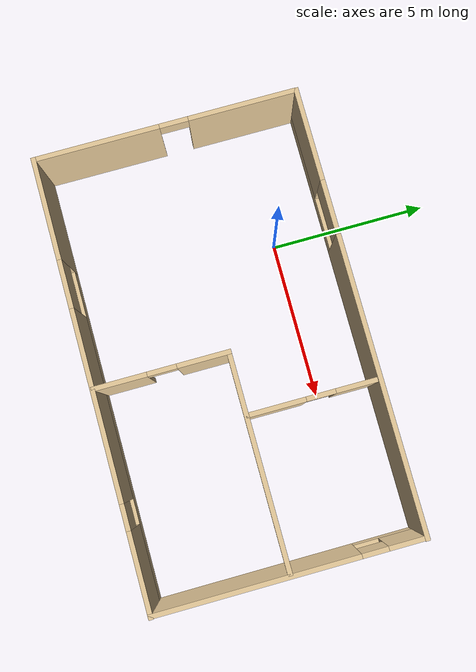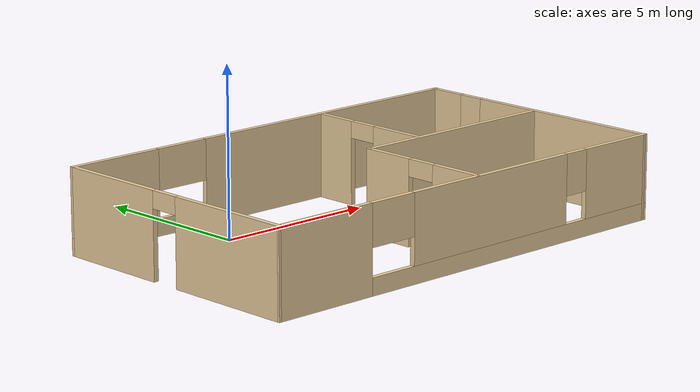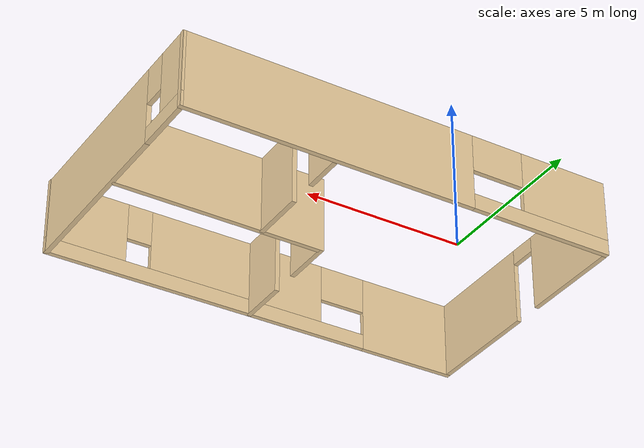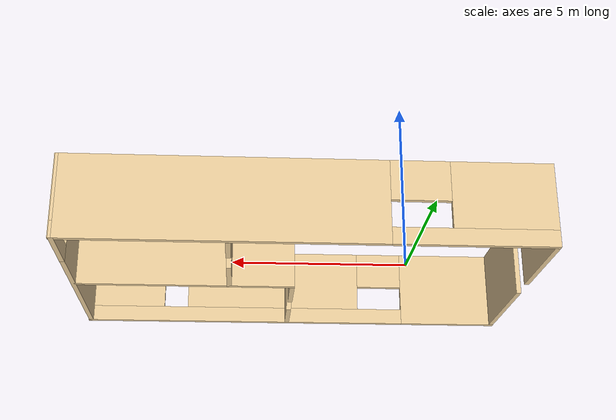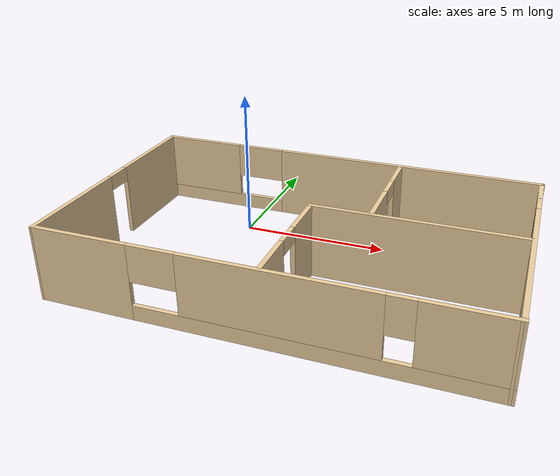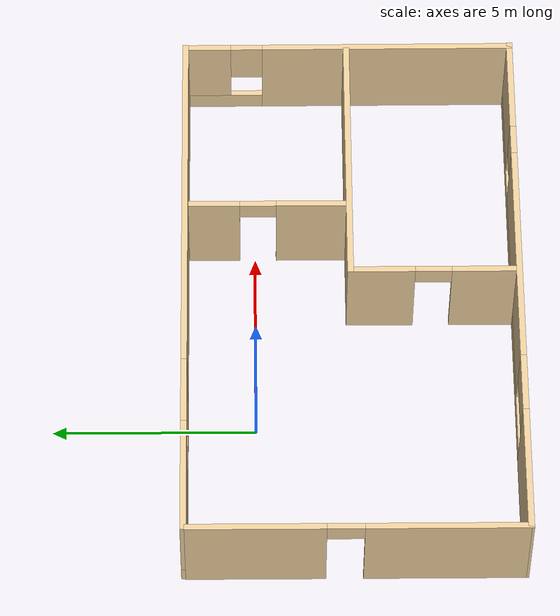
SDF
<?xml version='1.0'?>
<sdf version='1.6'>
  <model name='myhouse'>
    <pose frame=''>2.95228 -2.3635 0 0 -0 0</pose>
    <link name='Wall_1'>
      <pose frame=''>-6.93839 -0.042192 0 0 -0 -1.5708</pose>
      <visual name='Wall_1_Visual_0'>
        <pose frame=''>-2.44081 0 1.25 0 -0 0</pose>
        <geometry>
          <box>
            <size>3.36838 0.15 2.5</size>
          </box>
        </geometry>
        <material>
          <script>
            <uri>file://media/materials/scripts/gazebo.material</uri>
            <name>Gazebo/Grey</name>
          </script>
          <ambient>0.921569 0.807843 0.615686 1</ambient>
        </material>
        <meta>
          <layer>0</layer>
        </meta>
      </visual>
      <collision name='Wall_1_Collision_0'>
        <geometry>
          <box>
            <size>3.36838 0.15 2.5</size>
          </box>
        </geometry>
        <pose frame=''>-2.44081 0 1.25 0 -0 0</pose>
      </collision>
      <visual name='Wall_1_Visual_1'>
        <pose frame=''>2.13419 0 1.25 0 -0 0</pose>
        <geometry>
          <box>
            <size>3.98162 0.15 2.5</size>
          </box>
        </geometry>
        <material>
          <script>
            <uri>file://media/materials/scripts/gazebo.material</uri>
            <name>Gazebo/Grey</name>
          </script>
          <ambient>0.921569 0.807843 0.615686 1</ambient>
        </material>
        <meta>
          <layer>0</layer>
        </meta>
      </visual>
      <collision name='Wall_1_Collision_1'>
        <geometry>
          <box>
            <size>3.98162 0.15 2.5</size>
          </box>
        </geometry>
        <pose frame=''>2.13419 0 1.25 0 -0 0</pose>
      </collision>
      <visual name='Wall_1_Visual_2'>
        <pose frame=''>-0.306616 0 2.25 0 -0 0</pose>
        <geometry>
          <box>
            <size>0.9 0.15 0.5</size>
          </box>
        </geometry>
        <material>
          <script>
            <uri>file://media/materials/scripts/gazebo.material</uri>
            <name>Gazebo/Grey</name>
          </script>
          <ambient>0.921569 0.807843 0.615686 1</ambient>
        </material>
        <meta>
          <layer>0</layer>
        </meta>
      </visual>
      <collision name='Wall_1_Collision_2'>
        <geometry>
          <box>
            <size>0.9 0.15 0.5</size>
          </box>
        </geometry>
        <pose frame=''>-0.306616 0 2.25 0 -0 0</pose>
      </collision>
    </link>
    <link name='Wall_10'>
      <pose frame=''>2.15645 2.02432 0 0 -0 1.5708</pose>
      <visual name='Wall_10_Visual_0'>
        <pose frame=''>-1.08885 0 1.25 0 -0 0</pose>
        <geometry>
          <box>
            <size>1.8223 0.15 2.5</size>
          </box>
        </geometry>
        <material>
          <script>
            <uri>file://media/materials/scripts/gazebo.material</uri>
            <name>Gazebo/Grey</name>
          </script>
          <ambient>0.921569 0.807843 0.615686 1</ambient>
        </material>
        <meta>
          <layer>0</layer>
        </meta>
      </visual>
      <collision name='Wall_10_Collision_0'>
        <geometry>
          <box>
            <size>1.8223 0.15 2.5</size>
          </box>
        </geometry>
        <pose frame=''>-1.08885 0 1.25 0 -0 0</pose>
      </collision>
      <visual name='Wall_10_Visual_1'>
        <pose frame=''>1.36115 0 1.25 0 -0 0</pose>
        <geometry>
          <box>
            <size>1.2777 0.15 2.5</size>
          </box>
        </geometry>
        <material>
          <script>
            <uri>file://media/materials/scripts/gazebo.material</uri>
            <name>Gazebo/Grey</name>
          </script>
          <ambient>0.921569 0.807843 0.615686 1</ambient>
        </material>
        <meta>
          <layer>0</layer>
        </meta>
      </visual>
      <collision name='Wall_10_Collision_1'>
        <geometry>
          <box>
            <size>1.2777 0.15 2.5</size>
          </box>
        </geometry>
        <pose frame=''>1.36115 0 1.25 0 -0 0</pose>
      </collision>
      <visual name='Wall_10_Visual_2'>
        <pose frame=''>0.272304 0 2.25 0 -0 0</pose>
        <geometry>
          <box>
            <size>0.9 0.15 0.5</size>
          </box>
        </geometry>
        <material>
          <script>
            <uri>file://media/materials/scripts/gazebo.material</uri>
            <name>Gazebo/Grey</name>
          </script>
          <ambient>0.921569 0.807843 0.615686 1</ambient>
        </material>
        <meta>
          <layer>0</layer>
        </meta>
      </visual>
      <collision name='Wall_10_Collision_2'>
        <geometry>
          <box>
            <size>0.9 0.15 0.5</size>
          </box>
        </geometry>
        <pose frame=''>0.272304 0 2.25 0 -0 0</pose>
      </collision>
    </link>
    <link name='Wall_2'>
      <pose frame=''>-0 -4.10094 0 0 -0 -0.00126</pose>
      <visual name='Wall_2_Visual_0'>
        <pose frame=''>-5.39522 0 1.25 0 -0 0</pose>
        <geometry>
          <box>
            <size>3.23635 0.15 2.5</size>
          </box>
        </geometry>
        <material>
          <script>
            <uri>file://media/materials/scripts/gazebo.material</uri>
            <name>Gazebo/Grey</name>
          </script>
          <ambient>0.921569 0.807843 0.615686 1</ambient>
        </material>
        <meta>
          <layer>0</layer>
        </meta>
      </visual>
      <collision name='Wall_2_Collision_0'>
        <geometry>
          <box>
            <size>3.23635 0.15 2.5</size>
          </box>
        </geometry>
        <pose frame=''>-5.39522 0 1.25 0 -0 0</pose>
      </collision>
      <visual name='Wall_2_Visual_1'>
        <pose frame=''>1.61817 0 0.25 0 -0 0</pose>
        <geometry>
          <box>
            <size>10.7904 0.15 0.5</size>
          </box>
        </geometry>
        <material>
          <script>
            <uri>file://media/materials/scripts/gazebo.material</uri>
            <name>Gazebo/Grey</name>
          </script>
          <ambient>0.921569 0.807843 0.615686 1</ambient>
        </material>
        <meta>
          <layer>0</layer>
        </meta>
      </visual>
      <collision name='Wall_2_Collision_1'>
        <geometry>
          <box>
            <size>10.7904 0.15 0.5</size>
          </box>
        </geometry>
        <pose frame=''>1.61817 0 0.25 0 -0 0</pose>
      </collision>
      <visual name='Wall_2_Visual_2'>
        <pose frame=''>0.690602 0 1.5 0 -0 0</pose>
        <geometry>
          <box>
            <size>5.90111 0.15 2</size>
          </box>
        </geometry>
        <material>
          <script>
            <uri>file://media/materials/scripts/gazebo.material</uri>
            <name>Gazebo/Grey</name>
          </script>
          <ambient>0.921569 0.807843 0.615686 1</ambient>
        </material>
        <meta>
          <layer>0</layer>
        </meta>
      </visual>
      <collision name='Wall_2_Collision_2'>
        <geometry>
          <box>
            <size>5.90111 0.15 2</size>
          </box>
        </geometry>
        <pose frame=''>0.690602 0 1.5 0 -0 0</pose>
      </collision>
      <visual name='Wall_2_Visual_3'>
        <pose frame=''>5.72727 0 1.5 0 -0 0</pose>
        <geometry>
          <box>
            <size>2.57224 0.15 2</size>
          </box>
        </geometry>
        <material>
          <script>
            <uri>file://media/materials/scripts/gazebo.material</uri>
            <name>Gazebo/Grey</name>
          </script>
          <ambient>0.921569 0.807843 0.615686 1</ambient>
        </material>
        <meta>
          <layer>0</layer>
        </meta>
      </visual>
      <collision name='Wall_2_Collision_3'>
        <geometry>
          <box>
            <size>2.57224 0.15 2</size>
          </box>
        </geometry>
        <pose frame=''>5.72727 0 1.5 0 -0 0</pose>
      </collision>
      <visual name='Wall_2_Visual_4'>
        <pose frame=''>-3.0185 0 1.9 0 -0 0</pose>
        <geometry>
          <box>
            <size>1.51709 0.15 1.2</size>
          </box>
        </geometry>
        <material>
          <script>
            <uri>file://media/materials/scripts/gazebo.material</uri>
            <name>Gazebo/Grey</name>
          </script>
          <ambient>0.921569 0.807843 0.615686 1</ambient>
        </material>
        <meta>
          <layer>0</layer>
        </meta>
      </visual>
      <collision name='Wall_2_Collision_4'>
        <geometry>
          <box>
            <size>1.51709 0.15 1.2</size>
          </box>
        </geometry>
        <pose frame=''>-3.0185 0 1.9 0 -0 0</pose>
      </collision>
      <visual name='Wall_2_Visual_5'>
        <pose frame=''>4.04116 0 1.9 0 -0 0</pose>
        <geometry>
          <box>
            <size>0.8 0.15 1.2</size>
          </box>
        </geometry>
        <material>
          <script>
            <uri>file://media/materials/scripts/gazebo.material</uri>
            <name>Gazebo/Grey</name>
          </script>
          <ambient>0.921569 0.807843 0.615686 1</ambient>
        </material>
        <meta>
          <layer>0</layer>
        </meta>
      </visual>
      <collision name='Wall_2_Collision_5'>
        <geometry>
          <box>
            <size>0.8 0.15 1.2</size>
          </box>
        </geometry>
        <pose frame=''>4.04116 0 1.9 0 -0 0</pose>
      </collision>
    </link>
    <link name='Wall_3'>
      <pose frame=''>6.91215 0 0 0 -0 1.57292</pose>
      <visual name='Wall_3_Visual_0'>
        <pose frame=''>-1.00988 0 1.25 0 -0 0</pose>
        <geometry>
          <box>
            <size>6.34962 0.15 2.5</size>
          </box>
        </geometry>
        <material>
          <script>
            <uri>file://media/materials/scripts/gazebo.material</uri>
            <name>Gazebo/Grey</name>
          </script>
          <ambient>0.921569 0.807843 0.615686 1</ambient>
        </material>
        <meta>
          <layer>0</layer>
        </meta>
      </visual>
      <collision name='Wall_3_Collision_0'>
        <geometry>
          <box>
            <size>6.34962 0.15 2.5</size>
          </box>
        </geometry>
        <pose frame=''>-1.00988 0 1.25 0 -0 0</pose>
      </collision>
      <visual name='Wall_3_Visual_1'>
        <pose frame=''>3.17481 0 0.25 0 -0 0</pose>
        <geometry>
          <box>
            <size>2.01976 0.15 0.5</size>
          </box>
        </geometry>
        <material>
          <script>
            <uri>file://media/materials/scripts/gazebo.material</uri>
            <name>Gazebo/Grey</name>
          </script>
          <ambient>0.921569 0.807843 0.615686 1</ambient>
        </material>
        <meta>
          <layer>0</layer>
        </meta>
      </visual>
      <collision name='Wall_3_Collision_1'>
        <geometry>
          <box>
            <size>2.01976 0.15 0.5</size>
          </box>
        </geometry>
        <pose frame=''>3.17481 0 0.25 0 -0 0</pose>
      </collision>
      <visual name='Wall_3_Visual_2'>
        <pose frame=''>3.57481 0 1.5 0 -0 0</pose>
        <geometry>
          <box>
            <size>1.21976 0.15 2</size>
          </box>
        </geometry>
        <material>
          <script>
            <uri>file://media/materials/scripts/gazebo.material</uri>
            <name>Gazebo/Grey</name>
          </script>
          <ambient>0.921569 0.807843 0.615686 1</ambient>
        </material>
        <meta>
          <layer>0</layer>
        </meta>
      </visual>
      <collision name='Wall_3_Collision_2'>
        <geometry>
          <box>
            <size>1.21976 0.15 2</size>
          </box>
        </geometry>
        <pose frame=''>3.57481 0 1.5 0 -0 0</pose>
      </collision>
      <visual name='Wall_3_Visual_3'>
        <pose frame=''>2.56493 0 1.9 0 -0 0</pose>
        <geometry>
          <box>
            <size>0.8 0.15 1.2</size>
          </box>
        </geometry>
        <material>
          <script>
            <uri>file://media/materials/scripts/gazebo.material</uri>
            <name>Gazebo/Grey</name>
          </script>
          <ambient>0.921569 0.807843 0.615686 1</ambient>
        </material>
        <meta>
          <layer>0</layer>
        </meta>
      </visual>
      <collision name='Wall_3_Collision_3'>
        <geometry>
          <box>
            <size>0.8 0.15 1.2</size>
          </box>
        </geometry>
        <pose frame=''>2.56493 0 1.9 0 -0 0</pose>
      </collision>
    </link>
    <link name='Wall_4'>
      <pose frame=''>-0.004103 4.10968 0 0 -0 3.14159</pose>
      <visual name='Wall_4_Visual_0'>
        <pose frame=''>-2.33933 0 1.25 0 -0 0</pose>
        <geometry>
          <box>
            <size>9.32135 0.15 2.5</size>
          </box>
        </geometry>
        <material>
          <script>
            <uri>file://media/materials/scripts/gazebo.material</uri>
            <name>Gazebo/Grey</name>
          </script>
          <ambient>0.921569 0.807843 0.615686 1</ambient>
        </material>
        <meta>
          <layer>0</layer>
        </meta>
      </visual>
      <collision name='Wall_4_Collision_0'>
        <geometry>
          <box>
            <size>9.32135 0.15 2.5</size>
          </box>
        </geometry>
        <pose frame=''>-2.33933 0 1.25 0 -0 0</pose>
      </collision>
      <visual name='Wall_4_Visual_1'>
        <pose frame=''>4.66067 0 0.25 0 -0 0</pose>
        <geometry>
          <box>
            <size>4.67865 0.15 0.5</size>
          </box>
        </geometry>
        <material>
          <script>
            <uri>file://media/materials/scripts/gazebo.material</uri>
            <name>Gazebo/Grey</name>
          </script>
          <ambient>0.921569 0.807843 0.615686 1</ambient>
        </material>
        <meta>
          <layer>0</layer>
        </meta>
      </visual>
      <collision name='Wall_4_Collision_1'>
        <geometry>
          <box>
            <size>4.67865 0.15 0.5</size>
          </box>
        </geometry>
        <pose frame=''>4.66067 0 0.25 0 -0 0</pose>
      </collision>
      <visual name='Wall_4_Visual_2'>
        <pose frame=''>5.51541 0 1.5 0 -0 0</pose>
        <geometry>
          <box>
            <size>2.96917 0.15 2</size>
          </box>
        </geometry>
        <material>
          <script>
            <uri>file://media/materials/scripts/gazebo.material</uri>
            <name>Gazebo/Grey</name>
          </script>
          <ambient>0.921569 0.807843 0.615686 1</ambient>
        </material>
        <meta>
          <layer>0</layer>
        </meta>
      </visual>
      <collision name='Wall_4_Collision_2'>
        <geometry>
          <box>
            <size>2.96917 0.15 2</size>
          </box>
        </geometry>
        <pose frame=''>5.51541 0 1.5 0 -0 0</pose>
      </collision>
      <visual name='Wall_4_Visual_3'>
        <pose frame=''>3.17609 0 1.9 0 -0 0</pose>
        <geometry>
          <box>
            <size>1.70948 0.15 1.2</size>
          </box>
        </geometry>
        <material>
          <script>
            <uri>file://media/materials/scripts/gazebo.material</uri>
            <name>Gazebo/Grey</name>
          </script>
          <ambient>0.921569 0.807843 0.615686 1</ambient>
        </material>
        <meta>
          <layer>0</layer>
        </meta>
      </visual>
      <collision name='Wall_4_Collision_3'>
        <geometry>
          <box>
            <size>1.70948 0.15 1.2</size>
          </box>
        </geometry>
        <pose frame=''>3.17609 0 1.9 0 -0 0</pose>
      </collision>
    </link>
    <link name='Wall_7'>
      <pose frame=''>0.215048 -2.01332 0 0 -0 1.5708</pose>
      <visual name='Wall_7_Visual_0'>
        <pose frame=''>-1.28059 0 1.25 0 -0 0</pose>
        <geometry>
          <box>
            <size>1.68883 0.15 2.5</size>
          </box>
        </geometry>
        <material>
          <script>
            <uri>file://media/materials/scripts/gazebo.material</uri>
            <name>Gazebo/Grey</name>
          </script>
          <ambient>0.921569 0.807843 0.615686 1</ambient>
        </material>
        <meta>
          <layer>0</layer>
        </meta>
      </visual>
      <collision name='Wall_7_Collision_0'>
        <geometry>
          <box>
            <size>1.68883 0.15 2.5</size>
          </box>
        </geometry>
        <pose frame=''>-1.28059 0 1.25 0 -0 0</pose>
      </collision>
      <visual name='Wall_7_Visual_1'>
        <pose frame=''>1.29441 0 1.25 0 -0 0</pose>
        <geometry>
          <box>
            <size>1.66117 0.15 2.5</size>
          </box>
        </geometry>
        <material>
          <script>
            <uri>file://media/materials/scripts/gazebo.material</uri>
            <name>Gazebo/Grey</name>
          </script>
          <ambient>0.921569 0.807843 0.615686 1</ambient>
        </material>
        <meta>
          <layer>0</layer>
        </meta>
      </visual>
      <collision name='Wall_7_Collision_1'>
        <geometry>
          <box>
            <size>1.66117 0.15 2.5</size>
          </box>
        </geometry>
        <pose frame=''>1.29441 0 1.25 0 -0 0</pose>
      </collision>
      <visual name='Wall_7_Visual_2'>
        <pose frame=''>0.013827 0 2.25 0 -0 0</pose>
        <geometry>
          <box>
            <size>0.9 0.15 0.5</size>
          </box>
        </geometry>
        <material>
          <script>
            <uri>file://media/materials/scripts/gazebo.material</uri>
            <name>Gazebo/Grey</name>
          </script>
          <ambient>0.921569 0.807843 0.615686 1</ambient>
        </material>
        <meta>
          <layer>0</layer>
        </meta>
      </visual>
      <collision name='Wall_7_Collision_2'>
        <geometry>
          <box>
            <size>0.9 0.15 0.5</size>
          </box>
        </geometry>
        <pose frame=''>0.013827 0 2.25 0 -0 0</pose>
      </collision>
    </link>
    <link name='Wall_8'>
      <collision name='Wall_8_Collision'>
        <geometry>
          <box>
            <size>6.75 0.15 2.5</size>
          </box>
        </geometry>
        <pose frame=''>0 0 1.25 0 -0 0</pose>
      </collision>
      <visual name='Wall_8_Visual'>
        <pose frame=''>0 0 1.25 0 -0 0</pose>
        <geometry>
          <box>
            <size>6.75 0.15 2.5</size>
          </box>
        </geometry>
        <material>
          <script>
            <uri>file://media/materials/scripts/gazebo.material</uri>
            <name>Gazebo/Grey</name>
          </script>
          <ambient>0.921569 0.807843 0.615686 1</ambient>
        </material>
        <meta>
          <layer>0</layer>
        </meta>
      </visual>
      <pose frame=''>3.51505 0.036684 0 0 -0 0</pose>
    </link>
    <static>1</static>
  </model>
</sdf>
